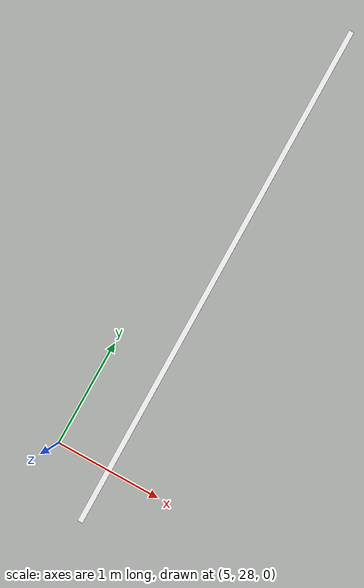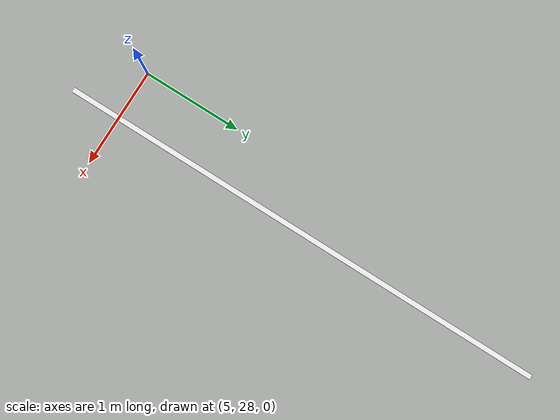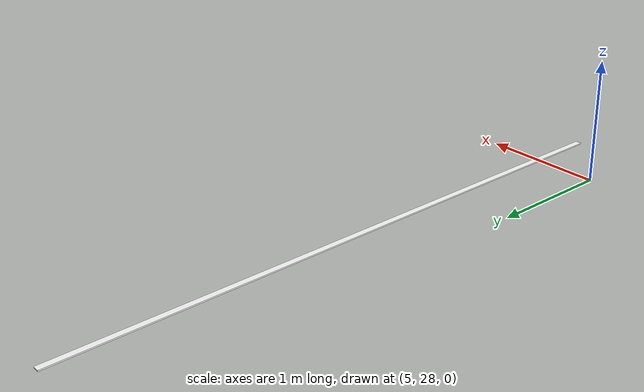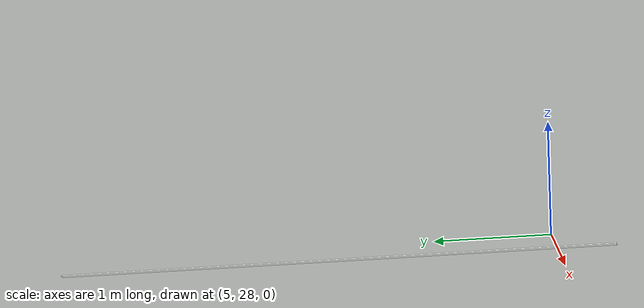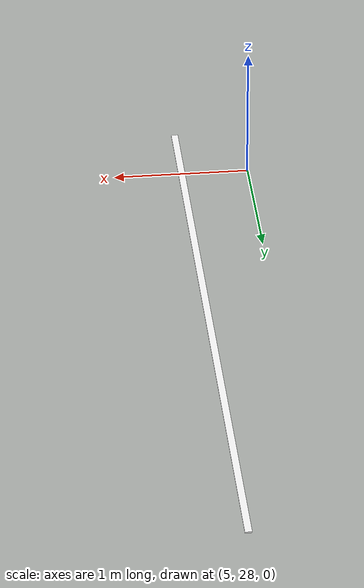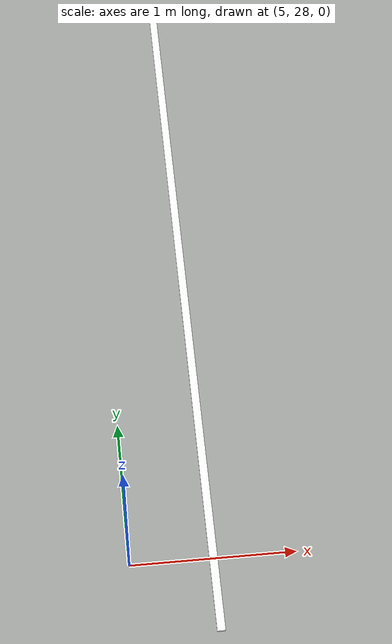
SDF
<?xml version="1.0" ?>
<sdf version="1.6">

    <model name="lane">
      <static>true</static>
      <pose>5.5 30 0.03 0 0 0</pose>
      <link name="link">
        <visual name="lane_line_side">
          <geometry>
            <box>
              <size>0.05 5 0.01</size>
            </box>
          </geometry>
          <material>
            <ambient>1 1 1 1</ambient>
            <diffuse>1 1 1 1</diffuse>
          </material>
        </visual>
      </link>
    </model>

</sdf>
